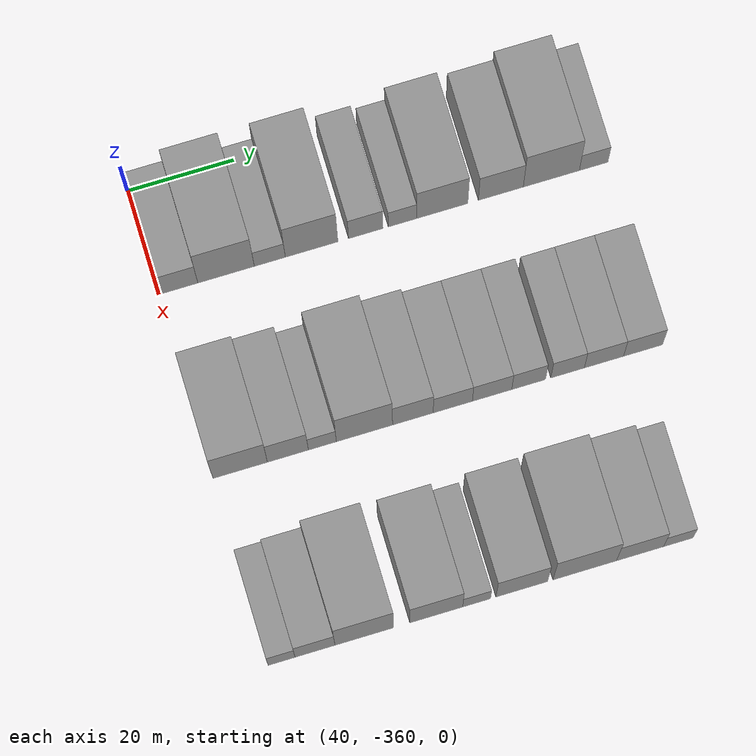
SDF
<sdf version="1.6">
 <world name="default">
  <model name="building_1">
   <static>1</static>
   <pose>50.0000 -356.3182 0 0.000000 0.000000 0.000000</pose>
   <link name="link">
    <pose>0 0 7.50 0 0 0</pose>
    <collision name="collision"><geometry><box><size>20.0000 7.3635 15.0000</size></box></geometry></collision>
    <visual name="visual">
     <cast_shadows>0</cast_shadows>
     <geometry><box><size>20.0000 7.3635 15.0000</size></box></geometry>
     <material>
      <script>
       <uri>model://grey_wall/materials/scripts</uri>
       <uri>model://grey_wall/materials/textures</uri>
       <name>vrc/grey_wall</name>
      </script>
     </material>
    </visual>
   </link>
  </model>
  <model name="building_2">
   <static>1</static>
   <pose>50.0000 -347.3220 0 0.000000 0.000000 0.000000</pose>
   <link name="link">
    <pose>0 0 12.00 0 0 0</pose>
    <collision name="collision"><geometry><box><size>20.0000 10.6289 24.0000</size></box></geometry></collision>
    <visual name="visual">
     <cast_shadows>0</cast_shadows>
     <geometry><box><size>20.0000 10.6289 24.0000</size></box></geometry>
     <material>
      <script>
       <uri>model://grey_wall/materials/scripts</uri>
       <uri>model://grey_wall/materials/textures</uri>
       <name>vrc/grey_wall</name>
      </script>
     </material>
    </visual>
   </link>
  </model>
  <model name="building_3">
   <static>1</static>
   <pose>50.0000 -339.0892 0 0.000000 0.000000 0.000000</pose>
   <link name="link">
    <pose>0 0 6.00 0 0 0</pose>
    <collision name="collision"><geometry><box><size>20.0000 5.8367 12.0000</size></box></geometry></collision>
    <visual name="visual">
     <cast_shadows>0</cast_shadows>
     <geometry><box><size>20.0000 5.8367 12.0000</size></box></geometry>
     <material>
      <script>
       <uri>model://grey_wall/materials/scripts</uri>
       <uri>model://grey_wall/materials/textures</uri>
       <name>vrc/grey_wall</name>
      </script>
     </material>
    </visual>
   </link>
  </model>
  <model name="building_4">
   <static>1</static>
   <pose>50.0000 -331.2127 0 0.000000 0.000000 0.000000</pose>
   <link name="link">
    <pose>0 0 12.00 0 0 0</pose>
    <collision name="collision"><geometry><box><size>20.0000 9.9163 24.0000</size></box></geometry></collision>
    <visual name="visual">
     <cast_shadows>0</cast_shadows>
     <geometry><box><size>20.0000 9.9163 24.0000</size></box></geometry>
     <material>
      <script>
       <uri>model://grey_wall/materials/scripts</uri>
       <uri>model://grey_wall/materials/textures</uri>
       <name>vrc/grey_wall</name>
      </script>
     </material>
    </visual>
   </link>
  </model>
  <model name="building_5">
   <static>1</static>
   <pose>50.0000 -320.9949 0 0.000000 0.000000 0.000000</pose>
   <link name="link">
    <pose>0 0 7.50 0 0 0</pose>
    <collision name="collision"><geometry><box><size>20.0000 6.5192 15.0000</size></box></geometry></collision>
    <visual name="visual">
     <cast_shadows>0</cast_shadows>
     <geometry><box><size>20.0000 6.5192 15.0000</size></box></geometry>
     <material>
      <script>
       <uri>model://grey_wall/materials/scripts</uri>
       <uri>model://grey_wall/materials/textures</uri>
       <name>vrc/grey_wall</name>
      </script>
     </material>
    </visual>
   </link>
  </model>
  <model name="building_6">
   <static>1</static>
   <pose>50.0000 -314.0571 0 0.000000 0.000000 0.000000</pose>
   <link name="link">
    <pose>0 0 6.00 0 0 0</pose>
    <collision name="collision"><geometry><box><size>20.0000 5.3563 12.0000</size></box></geometry></collision>
    <visual name="visual">
     <cast_shadows>0</cast_shadows>
     <geometry><box><size>20.0000 5.3563 12.0000</size></box></geometry>
     <material>
      <script>
       <uri>model://grey_wall/materials/scripts</uri>
       <uri>model://grey_wall/materials/textures</uri>
       <name>vrc/grey_wall</name>
      </script>
     </material>
    </visual>
   </link>
  </model>
  <model name="building_7">
   <static>1</static>
   <pose>50.0000 -306.5330 0 0.000000 0.000000 0.000000</pose>
   <link name="link">
    <pose>0 0 10.50 0 0 0</pose>
    <collision name="collision"><geometry><box><size>20.0000 9.6920 21.0000</size></box></geometry></collision>
    <visual name="visual">
     <cast_shadows>0</cast_shadows>
     <geometry><box><size>20.0000 9.6920 21.0000</size></box></geometry>
     <material>
      <script>
       <uri>model://grey_wall/materials/scripts</uri>
       <uri>model://grey_wall/materials/textures</uri>
       <name>vrc/grey_wall</name>
      </script>
     </material>
    </visual>
   </link>
  </model>
  <model name="building_8">
   <static>1</static>
   <pose>50.0000 -295.4323 0 0.000000 0.000000 0.000000</pose>
   <link name="link">
    <pose>0 0 9.00 0 0 0</pose>
    <collision name="collision"><geometry><box><size>20.0000 8.5095 18.0000</size></box></geometry></collision>
    <visual name="visual">
     <cast_shadows>0</cast_shadows>
     <geometry><box><size>20.0000 8.5095 18.0000</size></box></geometry>
     <material>
      <script>
       <uri>model://grey_wall/materials/scripts</uri>
       <uri>model://grey_wall/materials/textures</uri>
       <name>vrc/grey_wall</name>
      </script>
     </material>
    </visual>
   </link>
  </model>
  <model name="building_9">
   <static>1</static>
   <pose>50.0000 -285.8523 0 0.000000 0.000000 0.000000</pose>
   <link name="link">
    <pose>0 0 12.00 0 0 0</pose>
    <collision name="collision"><geometry><box><size>20.0000 10.6504 24.0000</size></box></geometry></collision>
    <visual name="visual">
     <cast_shadows>0</cast_shadows>
     <geometry><box><size>20.0000 10.6504 24.0000</size></box></geometry>
     <material>
      <script>
       <uri>model://grey_wall/materials/scripts</uri>
       <uri>model://grey_wall/materials/textures</uri>
       <name>vrc/grey_wall</name>
      </script>
     </material>
    </visual>
   </link>
  </model>
  <model name="building_10">
   <static>1</static>
   <pose>50.0000 -277.8127 0 0.000000 0.000000 0.000000</pose>
   <link name="link">
    <pose>0 0 6.00 0 0 0</pose>
    <collision name="collision"><geometry><box><size>20.0000 5.4288 12.0000</size></box></geometry></collision>
    <visual name="visual">
     <cast_shadows>0</cast_shadows>
     <geometry><box><size>20.0000 5.4288 12.0000</size></box></geometry>
     <material>
      <script>
       <uri>model://grey_wall/materials/scripts</uri>
       <uri>model://grey_wall/materials/textures</uri>
       <name>vrc/grey_wall</name>
      </script>
     </material>
    </visual>
   </link>
  </model>
  <model name="building_81">
   <static>1</static>
   <pose>85.0000 -354.9230 0 0.000000 0.000000 0.000000</pose>
   <link name="link">
    <pose>0 0 10.50 0 0 0</pose>
    <collision name="collision"><geometry><box><size>20.0000 10.1540 21.0000</size></box></geometry></collision>
    <visual name="visual">
     <cast_shadows>0</cast_shadows>
     <geometry><box><size>20.0000 10.1540 21.0000</size></box></geometry>
     <material>
      <script>
       <uri>model://grey_wall/materials/scripts</uri>
       <uri>model://grey_wall/materials/textures</uri>
       <name>vrc/grey_wall</name>
      </script>
     </material>
    </visual>
   </link>
  </model>
  <model name="building_82">
   <static>1</static>
   <pose>85.0000 -346.0212 0 0.000000 0.000000 0.000000</pose>
   <link name="link">
    <pose>0 0 9.00 0 0 0</pose>
    <collision name="collision"><geometry><box><size>20.0000 7.6495 18.0000</size></box></geometry></collision>
    <visual name="visual">
     <cast_shadows>0</cast_shadows>
     <geometry><box><size>20.0000 7.6495 18.0000</size></box></geometry>
     <material>
      <script>
       <uri>model://grey_wall/materials/scripts</uri>
       <uri>model://grey_wall/materials/textures</uri>
       <name>vrc/grey_wall</name>
      </script>
     </material>
    </visual>
   </link>
  </model>
  <model name="building_83">
   <static>1</static>
   <pose>85.0000 -339.5776 0 0.000000 0.000000 0.000000</pose>
   <link name="link">
    <pose>0 0 6.00 0 0 0</pose>
    <collision name="collision"><geometry><box><size>20.0000 5.2378 12.0000</size></box></geometry></collision>
    <visual name="visual">
     <cast_shadows>0</cast_shadows>
     <geometry><box><size>20.0000 5.2378 12.0000</size></box></geometry>
     <material>
      <script>
       <uri>model://grey_wall/materials/scripts</uri>
       <uri>model://grey_wall/materials/textures</uri>
       <name>vrc/grey_wall</name>
      </script>
     </material>
    </visual>
   </link>
  </model>
  <model name="building_84">
   <static>1</static>
   <pose>85.0000 -331.7009 0 0.000000 0.000000 0.000000</pose>
   <link name="link">
    <pose>0 0 12.00 0 0 0</pose>
    <collision name="collision"><geometry><box><size>20.0000 10.5156 24.0000</size></box></geometry></collision>
    <visual name="visual">
     <cast_shadows>0</cast_shadows>
     <geometry><box><size>20.0000 10.5156 24.0000</size></box></geometry>
     <material>
      <script>
       <uri>model://grey_wall/materials/scripts</uri>
       <uri>model://grey_wall/materials/textures</uri>
       <name>vrc/grey_wall</name>
      </script>
     </material>
    </visual>
   </link>
  </model>
  <model name="building_85">
   <static>1</static>
   <pose>85.0000 -322.6389 0 0.000000 0.000000 0.000000</pose>
   <link name="link">
    <pose>0 0 9.00 0 0 0</pose>
    <collision name="collision"><geometry><box><size>20.0000 7.6083 18.0000</size></box></geometry></collision>
    <visual name="visual">
     <cast_shadows>0</cast_shadows>
     <geometry><box><size>20.0000 7.6083 18.0000</size></box></geometry>
     <material>
      <script>
       <uri>model://grey_wall/materials/scripts</uri>
       <uri>model://grey_wall/materials/textures</uri>
       <name>vrc/grey_wall</name>
      </script>
     </material>
    </visual>
   </link>
  </model>
  <model name="building_86">
   <static>1</static>
   <pose>85.0000 -315.1544 0 0.000000 0.000000 0.000000</pose>
   <link name="link">
    <pose>0 0 7.50 0 0 0</pose>
    <collision name="collision"><geometry><box><size>20.0000 7.3609 15.0000</size></box></geometry></collision>
    <visual name="visual">
     <cast_shadows>0</cast_shadows>
     <geometry><box><size>20.0000 7.3609 15.0000</size></box></geometry>
     <material>
      <script>
       <uri>model://grey_wall/materials/scripts</uri>
       <uri>model://grey_wall/materials/textures</uri>
       <name>vrc/grey_wall</name>
      </script>
     </material>
    </visual>
   </link>
  </model>
  <model name="building_87">
   <static>1</static>
   <pose>85.0000 -307.7761 0 0.000000 0.000000 0.000000</pose>
   <link name="link">
    <pose>0 0 7.50 0 0 0</pose>
    <collision name="collision"><geometry><box><size>20.0000 7.3957 15.0000</size></box></geometry></collision>
    <visual name="visual">
     <cast_shadows>0</cast_shadows>
     <geometry><box><size>20.0000 7.3957 15.0000</size></box></geometry>
     <material>
      <script>
       <uri>model://grey_wall/materials/scripts</uri>
       <uri>model://grey_wall/materials/textures</uri>
       <name>vrc/grey_wall</name>
      </script>
     </material>
    </visual>
   </link>
  </model>
  <model name="building_88">
   <static>1</static>
   <pose>85.0000 -300.9057 0 0.000000 0.000000 0.000000</pose>
   <link name="link">
    <pose>0 0 7.50 0 0 0</pose>
    <collision name="collision"><geometry><box><size>20.0000 6.3449 15.0000</size></box></geometry></collision>
    <visual name="visual">
     <cast_shadows>0</cast_shadows>
     <geometry><box><size>20.0000 6.3449 15.0000</size></box></geometry>
     <material>
      <script>
       <uri>model://grey_wall/materials/scripts</uri>
       <uri>model://grey_wall/materials/textures</uri>
       <name>vrc/grey_wall</name>
      </script>
     </material>
    </visual>
   </link>
  </model>
  <model name="building_89">
   <static>1</static>
   <pose>85.0000 -293.5814 0 0.000000 0.000000 0.000000</pose>
   <link name="link">
    <pose>0 0 7.50 0 0 0</pose>
    <collision name="collision"><geometry><box><size>20.0000 6.3038 15.0000</size></box></geometry></collision>
    <visual name="visual">
     <cast_shadows>0</cast_shadows>
     <geometry><box><size>20.0000 6.3038 15.0000</size></box></geometry>
     <material>
      <script>
       <uri>model://grey_wall/materials/scripts</uri>
       <uri>model://grey_wall/materials/textures</uri>
       <name>vrc/grey_wall</name>
      </script>
     </material>
    </visual>
   </link>
  </model>
  <model name="building_90">
   <static>1</static>
   <pose>85.0000 -286.7351 0 0.000000 0.000000 0.000000</pose>
   <link name="link">
    <pose>0 0 7.50 0 0 0</pose>
    <collision name="collision"><geometry><box><size>20.0000 7.3887 15.0000</size></box></geometry></collision>
    <visual name="visual">
     <cast_shadows>0</cast_shadows>
     <geometry><box><size>20.0000 7.3887 15.0000</size></box></geometry>
     <material>
      <script>
       <uri>model://grey_wall/materials/scripts</uri>
       <uri>model://grey_wall/materials/textures</uri>
       <name>vrc/grey_wall</name>
      </script>
     </material>
    </visual>
   </link>
  </model>
  <model name="building_91">
   <static>1</static>
   <pose>85.0000 -279.3662 0 0.000000 0.000000 0.000000</pose>
   <link name="link">
    <pose>0 0 7.50 0 0 0</pose>
    <collision name="collision"><geometry><box><size>20.0000 7.3492 15.0000</size></box></geometry></collision>
    <visual name="visual">
     <cast_shadows>0</cast_shadows>
     <geometry><box><size>20.0000 7.3492 15.0000</size></box></geometry>
     <material>
      <script>
       <uri>model://grey_wall/materials/scripts</uri>
       <uri>model://grey_wall/materials/textures</uri>
       <name>vrc/grey_wall</name>
      </script>
     </material>
    </visual>
   </link>
  </model>
  <model name="building_162">
   <static>1</static>
   <pose>120.0000 -357.5133 0 0.000000 0.000000 0.000000</pose>
   <link name="link">
    <pose>0 0 6.00 0 0 0</pose>
    <collision name="collision"><geometry><box><size>20.0000 4.9734 12.0000</size></box></geometry></collision>
    <visual name="visual">
     <cast_shadows>0</cast_shadows>
     <geometry><box><size>20.0000 4.9734 12.0000</size></box></geometry>
     <material>
      <script>
       <uri>model://grey_wall/materials/scripts</uri>
       <uri>model://grey_wall/materials/textures</uri>
       <name>vrc/grey_wall</name>
      </script>
     </material>
    </visual>
   </link>
  </model>
  <model name="building_163">
   <static>1</static>
   <pose>120.0000 -351.3323 0 0.000000 0.000000 0.000000</pose>
   <link name="link">
    <pose>0 0 7.50 0 0 0</pose>
    <collision name="collision"><geometry><box><size>20.0000 7.3888 15.0000</size></box></geometry></collision>
    <visual name="visual">
     <cast_shadows>0</cast_shadows>
     <geometry><box><size>20.0000 7.3888 15.0000</size></box></geometry>
     <material>
      <script>
       <uri>model://grey_wall/materials/scripts</uri>
       <uri>model://grey_wall/materials/textures</uri>
       <name>vrc/grey_wall</name>
      </script>
     </material>
    </visual>
   </link>
  </model>
  <model name="building_164">
   <static>1</static>
   <pose>120.0000 -342.1987 0 0.000000 0.000000 0.000000</pose>
   <link name="link">
    <pose>0 0 12.00 0 0 0</pose>
    <collision name="collision"><geometry><box><size>20.0000 10.8783 24.0000</size></box></geometry></collision>
    <visual name="visual">
     <cast_shadows>0</cast_shadows>
     <geometry><box><size>20.0000 10.8783 24.0000</size></box></geometry>
     <material>
      <script>
       <uri>model://grey_wall/materials/scripts</uri>
       <uri>model://grey_wall/materials/textures</uri>
       <name>vrc/grey_wall</name>
      </script>
     </material>
    </visual>
   </link>
  </model>
  <model name="building_165">
   <static>1</static>
   <pose>120.0000 -328.8432 0 0.000000 0.000000 0.000000</pose>
   <link name="link">
    <pose>0 0 10.50 0 0 0</pose>
    <collision name="collision"><geometry><box><size>20.0000 9.8327 21.0000</size></box></geometry></collision>
    <visual name="visual">
     <cast_shadows>0</cast_shadows>
     <geometry><box><size>20.0000 9.8327 21.0000</size></box></geometry>
     <material>
      <script>
       <uri>model://grey_wall/materials/scripts</uri>
       <uri>model://grey_wall/materials/textures</uri>
       <name>vrc/grey_wall</name>
      </script>
     </material>
    </visual>
   </link>
  </model>
  <model name="building_166">
   <static>1</static>
   <pose>120.0000 -321.3410 0 0.000000 0.000000 0.000000</pose>
   <link name="link">
    <pose>0 0 6.00 0 0 0</pose>
    <collision name="collision"><geometry><box><size>20.0000 5.1718 12.0000</size></box></geometry></collision>
    <visual name="visual">
     <cast_shadows>0</cast_shadows>
     <geometry><box><size>20.0000 5.1718 12.0000</size></box></geometry>
     <material>
      <script>
       <uri>model://grey_wall/materials/scripts</uri>
       <uri>model://grey_wall/materials/textures</uri>
       <name>vrc/grey_wall</name>
      </script>
     </material>
    </visual>
   </link>
  </model>
  <model name="building_167">
   <static>1</static>
   <pose>120.0000 -312.9410 0 0.000000 0.000000 0.000000</pose>
   <link name="link">
    <pose>0 0 10.50 0 0 0</pose>
    <collision name="collision"><geometry><box><size>20.0000 9.6281 21.0000</size></box></geometry></collision>
    <visual name="visual">
     <cast_shadows>0</cast_shadows>
     <geometry><box><size>20.0000 9.6281 21.0000</size></box></geometry>
     <material>
      <script>
       <uri>model://grey_wall/materials/scripts</uri>
       <uri>model://grey_wall/materials/textures</uri>
       <name>vrc/grey_wall</name>
      </script>
     </material>
    </visual>
   </link>
  </model>
  <model name="building_168">
   <static>1</static>
   <pose>120.0000 -301.1941 0 0.000000 0.000000 0.000000</pose>
   <link name="link">
    <pose>0 0 12.00 0 0 0</pose>
    <collision name="collision"><geometry><box><size>20.0000 11.8657 24.0000</size></box></geometry></collision>
    <visual name="visual">
     <cast_shadows>0</cast_shadows>
     <geometry><box><size>20.0000 11.8657 24.0000</size></box></geometry>
     <material>
      <script>
       <uri>model://grey_wall/materials/scripts</uri>
       <uri>model://grey_wall/materials/textures</uri>
       <name>vrc/grey_wall</name>
      </script>
     </material>
    </visual>
   </link>
  </model>
  <model name="building_169">
   <static>1</static>
   <pose>120.0000 -290.8749 0 0.000000 0.000000 0.000000</pose>
   <link name="link">
    <pose>0 0 9.00 0 0 0</pose>
    <collision name="collision"><geometry><box><size>20.0000 8.7728 18.0000</size></box></geometry></collision>
    <visual name="visual">
     <cast_shadows>0</cast_shadows>
     <geometry><box><size>20.0000 8.7728 18.0000</size></box></geometry>
     <material>
      <script>
       <uri>model://grey_wall/materials/scripts</uri>
       <uri>model://grey_wall/materials/textures</uri>
       <name>vrc/grey_wall</name>
      </script>
     </material>
    </visual>
   </link>
  </model>
  <model name="building_170">
   <static>1</static>
   <pose>120.0000 -283.7171 0 0.000000 0.000000 0.000000</pose>
   <link name="link">
    <pose>0 0 6.00 0 0 0</pose>
    <collision name="collision"><geometry><box><size>20.0000 5.5427 12.0000</size></box></geometry></collision>
    <visual name="visual">
     <cast_shadows>0</cast_shadows>
     <geometry><box><size>20.0000 5.5427 12.0000</size></box></geometry>
     <material>
      <script>
       <uri>model://grey_wall/materials/scripts</uri>
       <uri>model://grey_wall/materials/textures</uri>
       <name>vrc/grey_wall</name>
      </script>
     </material>
    </visual>
   </link>
  </model>
 </world>
</sdf>
